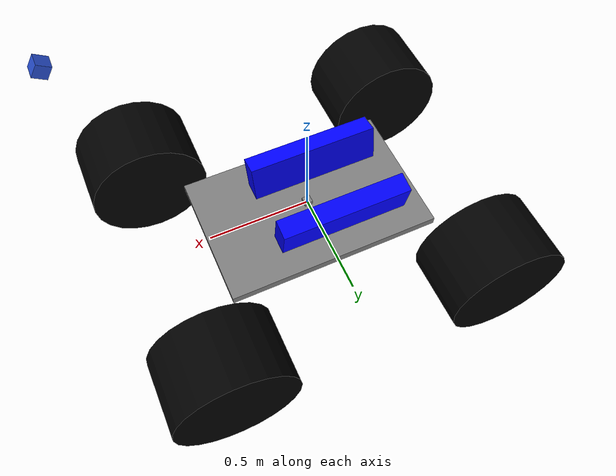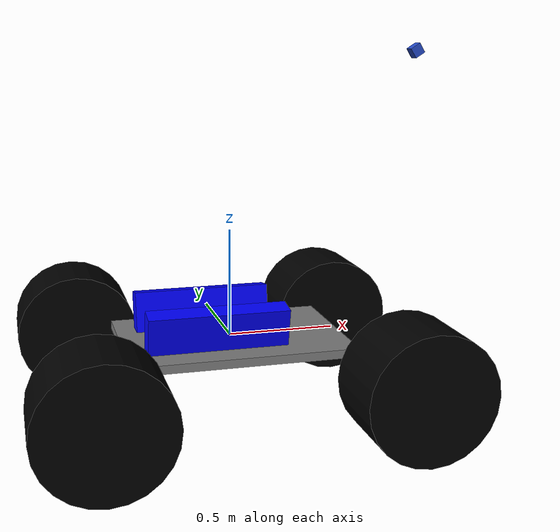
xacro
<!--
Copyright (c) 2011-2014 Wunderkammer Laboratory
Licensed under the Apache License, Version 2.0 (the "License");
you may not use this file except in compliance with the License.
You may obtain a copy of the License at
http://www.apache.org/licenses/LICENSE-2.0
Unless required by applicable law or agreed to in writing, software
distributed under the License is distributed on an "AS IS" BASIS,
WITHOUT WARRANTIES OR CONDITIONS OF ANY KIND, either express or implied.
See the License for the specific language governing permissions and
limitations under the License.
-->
<?xml version="1.0"?>

<robot name="em_3905" xmlns:xacro="http://www.ros.org/wiki/xacro">
  <!-- Degree-to-radian conversions -->
  <xacro:property name="degrees_45" value="0.785398163"/>
  <xacro:property name="degrees_90" value="1.57079633"/>

  <!-- chassis_length is measured along the x axis, chassis_width
       along the y axis, and chassis_height along the z axis. -->
  <xacro:property name="chassis_length" value="1.032"/>
  <xacro:property name="chassis_width" value="0.672"/>
  <xacro:property name="chassis_height" value="0.04"/>
  <xacro:property name="chassis_mass" value="2.788"/>

  <xacro:property name="battery_x_offset" value="0.22"/>
  <xacro:property name="battery_dist" value="0.26"/>
  <xacro:property name="battery_comp_depth" value="0.08"/>
  <xacro:property name="battery_comp_angle" value="1.3962635"/>
  <xacro:property name="battery_length" value="0.64"/>
  <xacro:property name="battery_width" value="0.188"/>
  <xacro:property name="battery_height" value="0.096"/>
  <xacro:property name="battery_mass" value="2.01"/>

  <xacro:property name="hub_dia" value="0.38608"/>
  <xacro:property name="tire_dia" value="0.5842"/>
  <xacro:property name="tire_width" value="0.3556"/>
  <xacro:property name="hex_hub_depth" value="0.0578"/>
  <xacro:property name="wheel_mass" value="1.16"/>

  <xacro:property name="wheelbase" value="1.34"/>
  <xacro:property name="hex_hub_dist" value="1.46"/>
  <xacro:property name="axle_length" value="0.12"/>
  <xacro:property name="wheel_travel" value="0.336"/>
  <xacro:property name="shock_z_offset" value="0.262"/>

  <xacro:property name="shock_eff_limit" value="50.0424"/>
  <xacro:property name="shock_vel_limit" value="4000"/>

  <xacro:property name="axle_eff_limit" value="20.51064"/>
  <xacro:property name="axle_vel_limit" value="979.4784"/>

  <!-- These constants are used to simulate a Traxxas 2056 servo operated at
       6 V. servo_stall_torque is measured in N m. servo_no_load_speed is
       measured in rad/s. -->
  <xacro:property name="servo_stall_torque" value="0.5649"/>
  <xacro:property name="servo_no_load_speed" value="4.553"/>

  <material name="battery_mat">
    <color rgba="0 0 1 1"/>
  </material>
  <material name="chassis_mat">
    <color rgba="0.5 0.5 0.5 1"/>
  </material>
  <material name="tire_mat">
    <color rgba="0 0 0 1"/>
  </material>

  <!-- Null inertial element. This is needed to make the model work with
       Gazebo. -->
  <xacro:macro name="null_inertial">
    <inertial>
      <mass value="0.001"/>
      <inertia ixx="0.001" ixy="0" ixz="0" iyy="0.001" iyz="0" izz="0.001"/>
    </inertial>
  </xacro:macro>

  <!-- Inertia of a solid cuboid. Width is measured along the x axis, depth
       along the y axis, and height along the z axis. -->
  <xacro:macro name="solid_cuboid_inertial"
               params="width depth height mass *origin">
    <inertial>
      <xacro:insert_block name="origin"/>
      <mass value="${mass}"/>
      <inertia ixx="${mass * (depth * depth + height * height) / 12}"
               ixy="0" ixz="0"
               iyy="${mass * (width * width + height * height) / 12}"
               iyz="0"
               izz="${mass * (width * width + depth * depth) / 12}"/>
    </inertial>
  </xacro:macro>

  <xacro:macro name="thick_walled_tube_inertial"
               params="inner_rad outer_rad height mass">
    <inertial>
      <mass value="${mass}"/>
      <inertia ixx="${(1 / 12) * mass * (3 * (inner_rad * inner_rad +
                    outer_rad * outer_rad) + height * height)}"
               ixy="0" ixz="0"
               iyy="${(1 / 12) * mass * (3 * (inner_rad * inner_rad +
                    outer_rad * outer_rad) + height * height)}"
               iyz="0"
               izz="${mass * (inner_rad * inner_rad +
                    outer_rad * outer_rad) / 2}"/>
    </inertial>
  </xacro:macro>

  <!-- Battery -->
  <xacro:macro name="battery" params="prefix reflect">
    <joint name="chassis_to_${prefix}_battery" type="fixed">
      <parent link="chassis"/>
      <child link="${prefix}_battery_offset"/>
      <origin xyz="${battery_x_offset - battery_length / 2}
                   ${reflect * battery_dist / 2}
                   0"
              rpy="${reflect * battery_comp_angle} 0 0"/>
    </joint>

    <link name="${prefix}_battery_offset">
      <xacro:null_inertial/>
    </link>

    <joint name="offset_to_${prefix}_battery" type="fixed">
      <parent link="${prefix}_battery_offset"/>
      <child link="${prefix}_battery"/>
      <origin xyz="0
                   ${reflect * battery_width / 2}
                   ${(battery_height / 2) - battery_comp_depth}"/>
    </joint>

    <link name="${prefix}_battery">
      <visual>
        <geometry>
          <box size="${battery_length} ${battery_width} ${battery_height}"/>
        </geometry>
        <material name="battery_mat"/>
      </visual>

      <collision>
        <geometry>
          <box size="${battery_length} ${battery_width} ${battery_height}"/>
        </geometry>
      </collision>

      <xacro:solid_cuboid_inertial
         width="${battery_length}" depth="${battery_width}"
         height="${battery_height}" mass="${battery_mass}">
        <origin/>
      </xacro:solid_cuboid_inertial>
    </link>

    <gazebo reference="${prefix}_battery">
      <material>Gazebo/Blue</material>
    </gazebo>
  </xacro:macro>

  <!-- Shock absorber -->
  <xacro:macro name="shock"
               params="lr_prefix fr_prefix lr_reflect fr_reflect child">
    <joint name="${lr_prefix}_${fr_prefix}_shock" type="prismatic">
      <parent link="chassis"/>
      <child link="${child}"/>

      <origin xyz="${fr_reflect * wheelbase / 2}
                   ${lr_reflect * ((hex_hub_dist / 2) - axle_length)}
                   ${(wheel_travel / 2) - shock_z_offset}"/>
      <axis xyz="0 0 -1"/>
      <limit lower="${-wheel_travel / 2}" upper="${wheel_travel / 2}"
             effort="${shock_eff_limit}" velocity="${shock_vel_limit}"/>
    </joint>
    <transmission name="${lr_prefix}_${fr_prefix}_shock_trans">
      <type>transmission_interface/SimpleTransmission</type>
      <joint name="${lr_prefix}_${fr_prefix}_shock">
        <hardwareInterface>hardware_interface/EffortJointInterface</hardwareInterface>
      </joint>
      <actuator name="${lr_prefix}_${fr_prefix}_shock_act">
        <!-- This hardwareInterface element exists for compatibility
             with ROS Hydro. -->
        <hardwareInterface>hardware_interface/EffortJointInterface</hardwareInterface>
        <mechanicalReduction>1</mechanicalReduction>
      </actuator>
    </transmission>
  </xacro:macro>

  <!-- The "wheel" macro defines an axle carrier, axle, and wheel. -->
  <xacro:macro name="wheel" params="lr_prefix fr_prefix lr_reflect">
    <link name="${lr_prefix}_${fr_prefix}_axle_carrier">
      <xacro:null_inertial/>
    </link>

    <!-- The left and right axles have the same axis so that identical
         rotation values cause the wheels to rotate in the same direction. -->
    <joint name="${lr_prefix}_${fr_prefix}_axle" type="continuous">
      <parent link="${lr_prefix}_${fr_prefix}_axle_carrier"/>
      <child link="${lr_prefix}_${fr_prefix}_wheel"/>
      <origin rpy="${degrees_90} 0 0"/>
      <axis xyz="0 0 -1"/>
      <limit effort="${axle_eff_limit}" velocity="${axle_vel_limit}"/>
    </joint>
    <transmission name="${lr_prefix}_${fr_prefix}_axle_trans">
      <type>transmission_interface/SimpleTransmission</type>
      <joint name="${lr_prefix}_${fr_prefix}_axle">
        <hardwareInterface>hardware_interface/EffortJointInterface</hardwareInterface>
      </joint>
      <actuator name="${lr_prefix}_${fr_prefix}_axle_act">
        <!-- This hardwareInterface element exists for compatibility
             with ROS Hydro. -->
        <hardwareInterface>hardware_interface/EffortJointInterface</hardwareInterface>
        <mechanicalReduction>1</mechanicalReduction>
      </actuator>
    </transmission>

    <link name="${lr_prefix}_${fr_prefix}_wheel">
      <visual>
        <origin xyz="0
                     ${lr_reflect * (axle_length - (tire_width /
                     2 - hex_hub_depth))}
                     0"/>
        <geometry>
          <cylinder radius="${tire_dia / 2}" length="${tire_width}"/>
        </geometry>
        <material name="tire_mat"/>
      </visual>

      <collision>
        <origin xyz="0
                     ${lr_reflect * (axle_length - (tire_width /
                     2 - hex_hub_depth))}
                     0"/>
        <geometry>
          <cylinder radius="${tire_dia / 2}" length="${tire_width}"/>
        </geometry>
      </collision>

      <xacro:thick_walled_tube_inertial
          inner_rad="${hub_dia / 2}" outer_rad="${tire_dia / 2}"
          height="${tire_width}" mass="${wheel_mass}"/>
    </link>

    <gazebo reference="${lr_prefix}_${fr_prefix}_wheel">
      <material>Gazebo/Red</material>
    </gazebo>
  </xacro:macro>

  <!-- Front wheel -->
  <xacro:macro name="front_wheel"
               params="lr_prefix fr_prefix lr_reflect fr_reflect">
    <xacro:shock lr_prefix="${lr_prefix}" fr_prefix="${fr_prefix}"
                 lr_reflect="${lr_reflect}" fr_reflect="${fr_reflect}"
                 child="${lr_prefix}_steering_link"/>

    <link name="${lr_prefix}_steering_link">
      <xacro:null_inertial/>
    </link>

    <joint name="${lr_prefix}_steering_joint" type="revolute">
      <parent link="${lr_prefix}_steering_link"/>
      <child link="${lr_prefix}_${fr_prefix}_axle_carrier"/>
      <axis xyz="0 0 1"/>
      <limit lower="${-degrees_45}" upper="${degrees_45}"
             effort="${servo_stall_torque}" velocity="${servo_no_load_speed}"/>
    </joint>
    <transmission name="${lr_prefix}_steering_trans">
      <type>transmission_interface/SimpleTransmission</type>
      <joint name="${lr_prefix}_steering_joint">
        <hardwareInterface>hardware_interface/EffortJointInterface</hardwareInterface>
      </joint>
      <actuator name="${lr_prefix}_steering_act">
        <!-- This hardwareInterface element exists for compatibility
             with ROS Hydro. -->
        <hardwareInterface>hardware_interface/EffortJointInterface</hardwareInterface>
        <mechanicalReduction>1</mechanicalReduction>
      </actuator>
    </transmission>

    <xacro:wheel lr_prefix="${lr_prefix}" fr_prefix="${fr_prefix}"
                 lr_reflect="${lr_reflect}"/>
  </xacro:macro>

  <!-- Rear wheel -->
  <xacro:macro name="rear_wheel"
               params="lr_prefix fr_prefix lr_reflect fr_reflect">
    <xacro:shock lr_prefix="${lr_prefix}" fr_prefix="${fr_prefix}"
                 lr_reflect="${lr_reflect}" fr_reflect="${fr_reflect}"
                 child="${lr_prefix}_${fr_prefix}_axle_carrier"/>
    <xacro:wheel lr_prefix="${lr_prefix}" fr_prefix="${fr_prefix}"
                 lr_reflect="${lr_reflect}"/>
  </xacro:macro>

  <!-- base_link must have geometry so that its axes can be displayed in
       rviz. -->
  <link name="base_link">
    <visual>
      <geometry>
        <box size="0.04 0.04 0.04"/>
      </geometry>
      <material name="chassis_mat"/>
    </visual>
  </link>
  <gazebo reference="base_link">
    <material>Gazebo/Grey</material>
  </gazebo>

  <!-- Chassis -->
  <link name="chassis">
    <visual>
      <origin xyz="0 0 ${-chassis_height / 2}"/>
      <geometry>
        <box size="${chassis_length} ${chassis_width} ${chassis_height}"/>
      </geometry>
      <material name="chassis_mat"/>
    </visual>

    <collision>
      <origin xyz="0 0 ${-chassis_height / 2}"/>
      <geometry>
        <box size="${chassis_length} ${chassis_width} ${chassis_height}"/>
      </geometry>
    </collision>

    <xacro:solid_cuboid_inertial
        width="${chassis_length}" depth="${chassis_width}"
        height="${chassis_height}" mass="${chassis_mass}">
      <origin xyz="0 0 ${-chassis_height / 2}"/>
    </xacro:solid_cuboid_inertial>
  </link>
  <gazebo reference="chassis">
    <material>Gazebo/Grey</material>
  </gazebo>

  <joint name="base_link_to_chassis" type="fixed">
    <parent link="base_link"/>
    <child link="chassis"/>
  </joint>

  <!-- Batteries -->
  <xacro:battery prefix="left" reflect="1"/>
  <xacro:battery prefix="right" reflect="-1"/>

  <!-- Wheels -->
  <xacro:front_wheel lr_prefix="left" fr_prefix="front"
                     lr_reflect="1" fr_reflect="1"/>
  <xacro:front_wheel lr_prefix="right" fr_prefix="front"
                     lr_reflect="-1" fr_reflect="1"/>
  <xacro:rear_wheel lr_prefix="left" fr_prefix="rear"
                    lr_reflect="1" fr_reflect="-1"/>
  <xacro:rear_wheel lr_prefix="right" fr_prefix="rear"
                    lr_reflect="-1" fr_reflect="-1"/>

  <gazebo>
    <plugin name="gazebo_ros_control" filename="libgazebo_ros_control.so"/>
  </gazebo>
  <joint name="camera_joint" type="fixed">
    <origin rpy="0 1.0 0" xyz="0.8765 0 1.292"/>
    <parent link="chassis"/>
    <child link="camera"/>
  </joint>
  <link name="camera">
    <collision>
      <origin rpy="0 0 0" xyz="0 0 0"/>
      <geometry>
        <box size=".05 .05 .05"/>
      </geometry>
    </collision>
    <visual>
      <origin rpy="0 0 0" xyz="0 0 0"/>
      <geometry>
        <box size=".05 .05 .05"/>
      </geometry>
      <material name="blue"/>
    </visual>
    <inertial>
      <mass value="0.05"/>
      <origin rpy="0 0 0" xyz="0 0 0"/>
      <inertia ixx="2.08333333333e-05" ixy="0" ixz="0" iyy="2.08333333333e-05" iyz="0" izz="2.08333333333e-05"/>
    </inertial>
  </link>
  <gazebo reference="camera">
    <material>Gazebo/Blue</material>
    <sensor name="camera1" type="camera">
      <update_rate>30.0</update_rate>
      <camera name="head">
        <horizontal_fov>1.3962634</horizontal_fov>
        <image>
          <width>1600</width>
          <height>1600</height>
          <format>R8G8B8</format>
        </image>
        <clip>
          <near>0.02</near>
          <far>300</far>
        </clip>
      </camera>
      <plugin filename="libgazebo_ros_camera.so" name="camera_controller">
        <alwaysOn>true</alwaysOn>
        <updateRate>0.0</updateRate>
        <cameraName>camera1</cameraName>
        <imageTopicName>image_raw</imageTopicName>
        <cameraInfoTopicName>camera_info</cameraInfoTopicName>
        <frameName>camera_link</frameName>
        <hackBaseline>0.07</hackBaseline>
        <distortionK1>0.0</distortionK1>
        <distortionK2>0.0</distortionK2>
        <distortionK3>0.0</distortionK3>
        <distortionT1>0.0</distortionT1>
        <distortionT2>0.0</distortionT2>
      </plugin>
    </sensor>
  </gazebo>
</robot>
